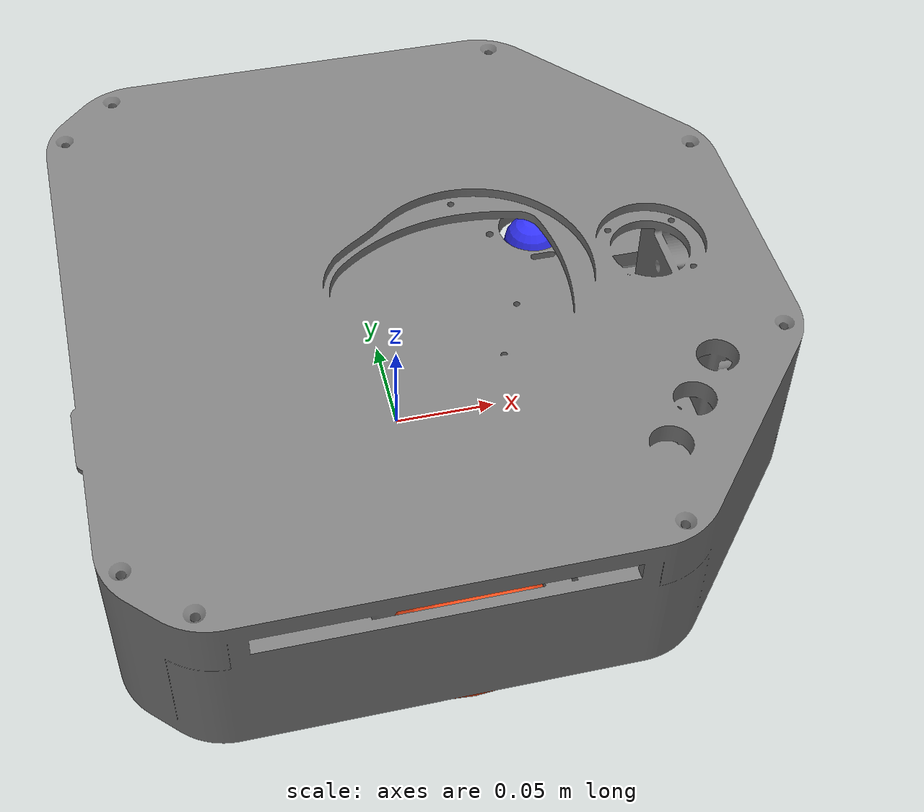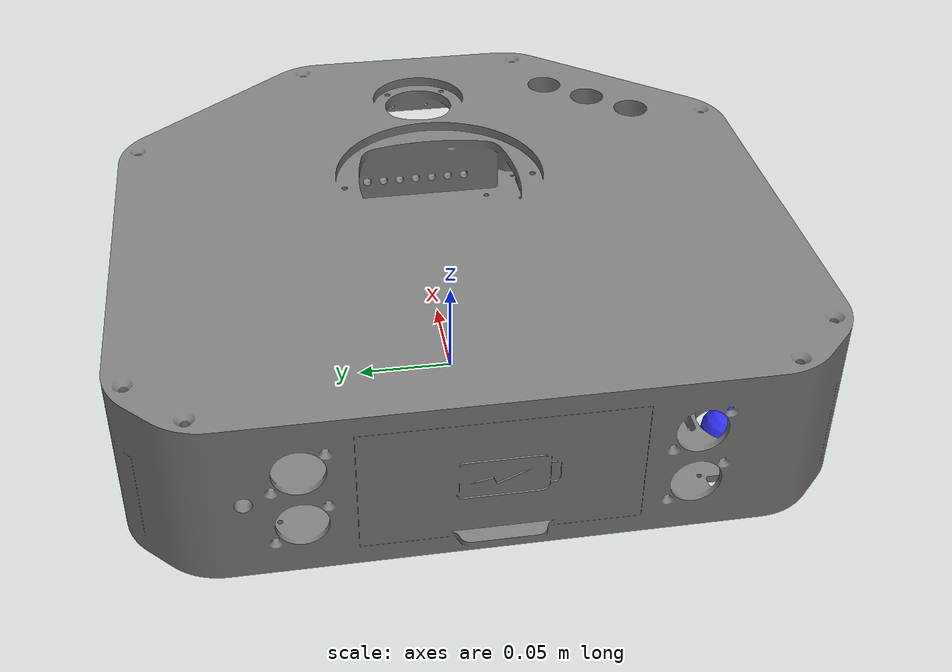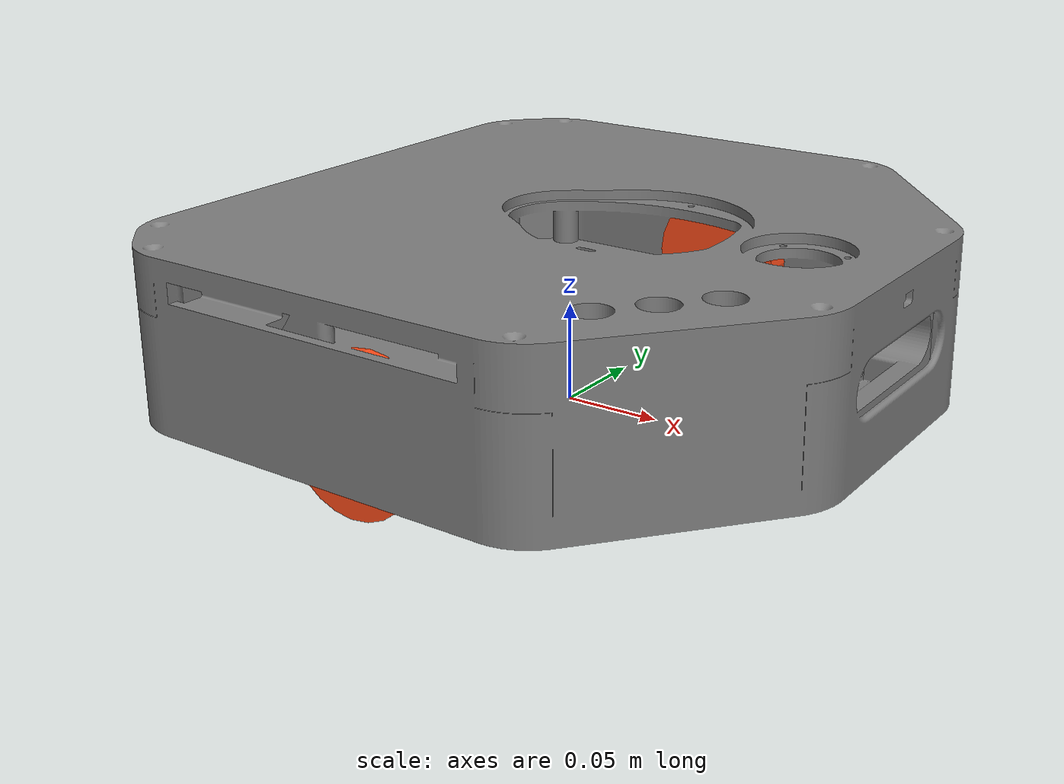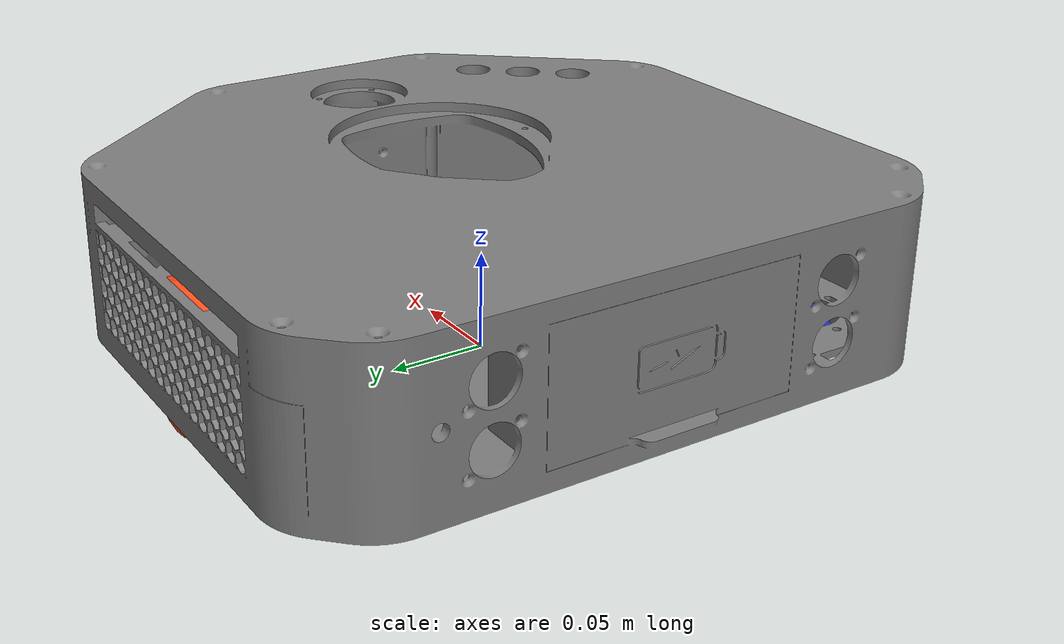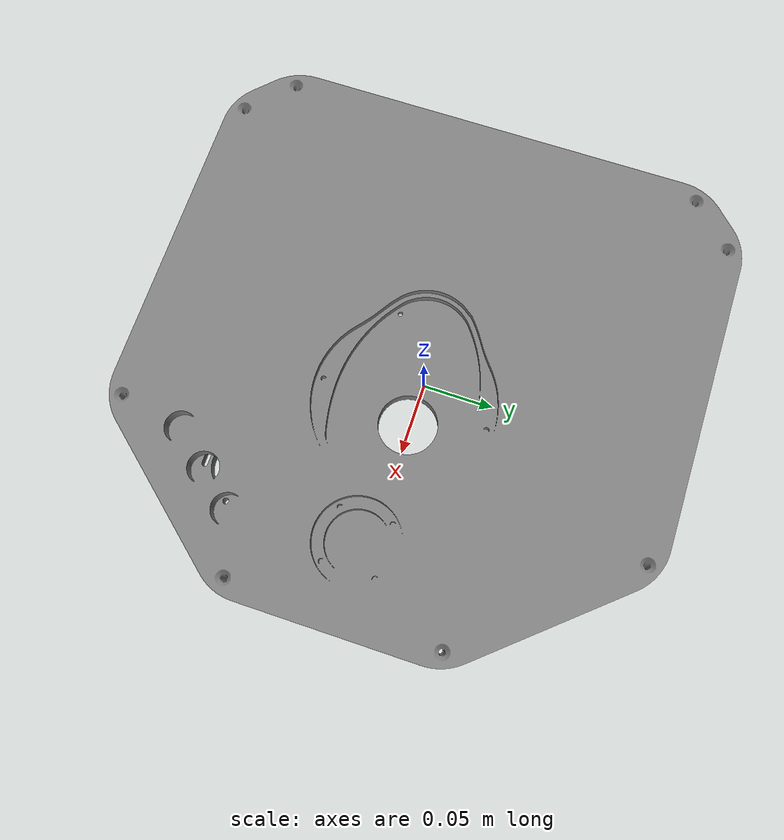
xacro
<?xml version="1.0"?>
<robot xmlns:xacro="http://www.ros.org/wiki/xacro" >

    <xacro:property name="wheel_radius" value="0.0360"/>
    <xacro:property name="wheel_separation" value="0.306"/>
    <xacro:property name="wheel_thickness" value="0.0160"/>
    <xacro:property name="wheel_mass" value="0.050"/>
    <xacro:property name="ground_clearance" value="0.0146"/>
    <xacro:property name="caster_wheel_mass" value="0.02"/>

    <!-- From base_link -->
    <xacro:property name="lidar_x_offset" value="0.038471"/>
    <xacro:property name="lidar_z_offset" value="0.0838"/>

    <xacro:include filename="inertial_macros.xacro"/>
    <xacro:include filename="materials.xacro"/>
    <xacro:include filename="caster_wheels.xacro"/>

    <link name="base_footprint"/>

    <joint name="base_link_joint" type="fixed">
        <parent link="base_footprint"/>
        <child  link="base_link"/>
        <origin xyz="0 0 ${wheel_radius}"/>
    </joint>

    <link name="base_link"/>

    <joint name="chassis_joint" type="fixed">
        <parent link="base_link"/>
        <child  link="chassis"/>
        <origin xyz="0 0 0"/>
    </joint>

    <link name="chassis">
        <visual>
            <origin rpy="0 0 0" xyz="0 0 0"/>
            <geometry>
                <mesh filename="package://astro/meshes/ASTRO_Chassis.stl" scale="0.001 0.001 0.001"/>
            </geometry>
            <material name="gray"/>
        </visual>
        <collision>
            <origin rpy="0 0 0" xyz="0 0 0"/>
            <geometry>
                <mesh filename="package://astro/meshes/ASTRO_Chassis.stl" scale="0.001 0.001 0.001"/>
            </geometry>
        </collision>
    </link>

    <joint name="left_wheel_joint" type="continuous">
        <parent link="base_link"/>
        <child link="left_wheel"/>
        <origin xyz="0 ${wheel_separation/2} 0" rpy="-${pi/2} 0 0"/>
        <axis xyz="0 0 1"/>
    </joint>

    <link name="left_wheel">
        <visual>
            <geometry>
                <cylinder length="${wheel_thickness}" radius="${wheel_radius}" />
            </geometry>
            <material name="orange"/>
        </visual>

        <collision>
            <geometry>
                <cylinder length="${wheel_thickness}" radius="${wheel_radius}" />
            </geometry>
        </collision>
        <xacro:inertial_cylinder mass="${wheel_mass}" length="${wheel_thickness}" radius="${wheel_radius}">
            <origin xyz="0 0 0" rpy="0 0 0"/>
        </xacro:inertial_cylinder>
    </link>

    <joint name="right_wheel_joint" type="continuous">
        <parent link="base_link"/>
        <child link="right_wheel"/>
        <origin xyz="0 -${wheel_separation/2} 0" rpy="${pi/2} 0 0"/>
        <axis xyz="0 0 -1"/>
    </joint>

    <link name="right_wheel">
        <visual>
            <geometry>
                <cylinder length="${wheel_thickness}" radius="${wheel_radius}" />
            </geometry>
            <material name="orange"/>
        </visual>

        <collision>
            <geometry>
                <cylinder length="${wheel_thickness}" radius="${wheel_radius}" />
            </geometry>
        </collision>

        <xacro:inertial_cylinder mass="${wheel_mass}" length="${wheel_thickness}" radius="${wheel_radius}">
            <origin xyz="0 0 0" rpy="0 0 0"/>
        </xacro:inertial_cylinder>
    </link>

</robot>

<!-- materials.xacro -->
<robot xmlns:xacro="http://www.ros.org/wiki/xacro">

    <material name="white">
        <color rgba="1 1 1 1" />
    </material>

    <material name="orange">
        <color rgba="1 0.3 0.1 1"/>
    </material>

    <material name="blue">
        <color rgba="0.2 0.2 1 1"/>
    </material>

    <material name="black">
        <color rgba="0 0 0 1"/>
    </material>

    <material name="red">
        <color rgba="1 0 0 1"/>
    </material>

    <material name="gray">
        <color rgba="0.5 0.5 0.5 1"/>
    </material>

    <material name="dark_gray">
        <color rgba="0.2 0.2 0.2 1"/>
    </material>

    <material name="aluminum">
        <color rgba="0.1 0.1 0.1 1"/>
    </material>

    <material name="plastic">
        <color rgba="0.1 0.1 0.1 1"/>
    </material>
</robot>

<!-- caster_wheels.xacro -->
<robot xmlns:xacro="http://www.ros.org/wiki/xacro">

    <joint name="fl_caster_wheels_joint" type="fixed">
        <parent link="base_footprint"/>
        <child link ="fl_caster_wheel"/>
        <origin xyz="0.096 0.0965 ${ground_clearance}" rpy="0 0 0"/>
    </joint>

    <link name="fl_caster_wheel">
        <visual>
            <geometry>
                <sphere radius="${ground_clearance}"/>
            </geometry>
            <material name="blue"/>
        </visual>

        <collision>
            <geometry>
                <sphere radius="${ground_clearance}"/>
            </geometry>
        </collision>

        <xacro:inertial_sphere mass="${caster_wheel_mass}" radius="${ground_clearance}">
            <origin xyz="0 0 0" rpy="0 0 0"/>
        </xacro:inertial_sphere>
    </link>

    <gazebo reference="fl_caster_wheel">
        <material>Gazebo/Blue</material>
        <mu1 value="0.001"/>
        <mu2 value="0.001"/>
    </gazebo>

    <joint name="fr_caster_wheels_joint" type="fixed">
        <parent link="base_footprint"/>
        <child link ="fr_caster_wheel"/>
        <origin xyz="0.096 -0.0965 ${ground_clearance}" rpy="0 0 0"/>
    </joint>

    <link name="fr_caster_wheel">
        <visual>
            <geometry>
                <sphere radius="${ground_clearance}"/>
            </geometry>
            <material name="blue"/>
        </visual>

        <collision>
            <geometry>
                <sphere radius="${ground_clearance}"/>
            </geometry>
        </collision>

        <xacro:inertial_sphere mass="${caster_wheel_mass}" radius="${ground_clearance}">
            <origin xyz="0 0 0" rpy="0 0 0"/>
        </xacro:inertial_sphere>
    </link>

    <gazebo reference="fr_caster_wheel">
        <material>Gazebo/Blue</material>
        <mu1 value="0.001"/>
        <mu2 value="0.001"/>
    </gazebo>

    <joint name="rl_caster_wheels_joint" type="fixed">
        <parent link="base_footprint"/>
        <child link ="rl_caster_wheel"/>
        <origin xyz="-0.092 0.1265 ${ground_clearance}" rpy="0 0 0"/>
    </joint>

    <link name="rl_caster_wheel">
        <visual>
            <geometry>
                <sphere radius="${ground_clearance}"/>
            </geometry>
            <material name="blue"/>
        </visual>

        <collision>
            <geometry>
                <sphere radius="${ground_clearance}"/>
            </geometry>
        </collision>

        <xacro:inertial_sphere mass="${caster_wheel_mass}" radius="${ground_clearance}">
            <origin xyz="0 0 0" rpy="0 0 0"/>
        </xacro:inertial_sphere>
    </link>

    <gazebo reference="rl_caster_wheel">
        <material>Gazebo/Blue</material>
        <mu1 value="0.001"/>
        <mu2 value="0.001"/>
    </gazebo>

    <joint name="rr_caster_wheels_joint" type="fixed">
        <parent link="base_footprint"/>
        <child link ="rr_caster_wheel"/>
        <origin xyz="-0.092 -0.1265 ${ground_clearance}" rpy="0 0 0"/>
    </joint>

    <link name="rr_caster_wheel">
        <visual>
            <geometry>
                <sphere radius="${ground_clearance}"/>
            </geometry>
            <material name="blue"/>
        </visual>

        <collision>
            <geometry>
                <sphere radius="${ground_clearance}"/>
            </geometry>
        </collision>

        <xacro:inertial_sphere mass="${caster_wheel_mass}" radius="${ground_clearance}">
            <origin xyz="0 0 0" rpy="0 0 0"/>
        </xacro:inertial_sphere>
    </link>

    <gazebo reference="rr_caster_wheel">
        <material>Gazebo/Blue</material>
        <mu1 value="0.001"/>
        <mu2 value="0.001"/>
    </gazebo>

</robot>
